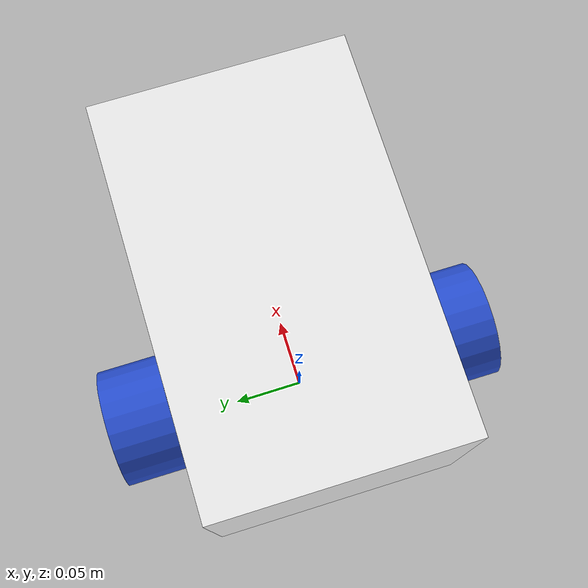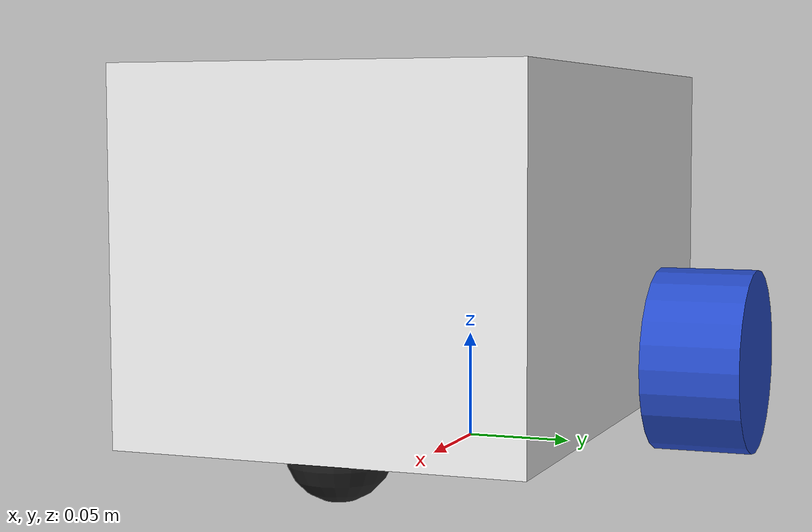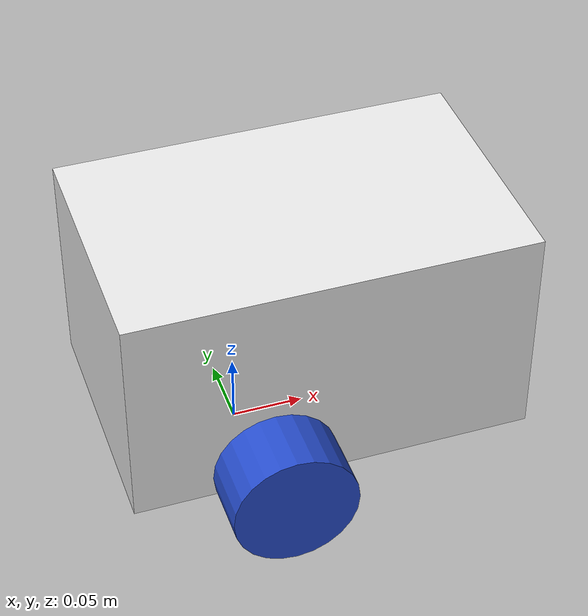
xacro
<?xml version="1.0"?>
<robot xmlns:xacro="http://www.ros.org/wiki/xacro">

    <!-- ================= BASE_FOOTPRINT ================= -->
    <!-- Ground-level frame, directly below base_link.
         Required by Nav2/RTAB-Map. -->
    <link name="base_footprint"/>

    <!-- ================= BASE_LINK ================= -->
    <!-- base_link placed at wheel axle height above base_footprint. -->
    <joint name="base_footprint_to_base_link" type="fixed">
        <parent link="base_footprint"/>
        <child link="base_link"/>
        <origin xyz="0 0 0.0425" rpy="0 0 0"/>
    </joint>

    <link name="base_link"/>

    <!-- ================= CHASSIS ================= -->
    <!-- Body origin shifted so wheel axle (base_link origin) is at 95mm from rear.
         Body bottom sits 20mm above ground = 2.5mm below base_link. -->
    <joint name="chassis_joint" type="fixed">
        <parent link="base_link"/>
        <child link="chassis"/>
        <origin xyz="-0.095 0 -0.0225" rpy="0 0 0"/>
    </joint>

    <link name="chassis">
        <visual>
            <origin xyz="0.139 0 0.078" rpy="0 0 0"/>
            <geometry>
                <box size="0.278 0.176 0.156"/>
            </geometry>
            <material name="white"/>
        </visual>
        <collision>
            <origin xyz="0.139 0 0.078" rpy="0 0 0"/>
            <geometry>
                <box size="0.278 0.176 0.156"/>
            </geometry>
        </collision>
        <xacro:inertial_box mass="3.0" x="0.278" y="0.176" z="0.156">
            <origin xyz="0.139 0 0.078" rpy="0 0 0"/>
        </xacro:inertial_box>
    </link>

    <!-- ================= LEFT WHEEL ================= -->
    <!-- Wheel separation 0.235 → each wheel 0.1175 from center.
         Wheel z=0 in base_link frame (axle is at base_link height). -->
    <joint name="left_wheel_joint" type="continuous">
        <parent link="base_link"/>
        <child link="left_wheel"/>
        <origin xyz="0 0.1175 0" rpy="-${pi/2} 0 0"/>
        <axis xyz="0 0 1"/>
    </joint>

    <link name="left_wheel">
        <visual>
            <geometry>
                <cylinder radius="0.0425" length="0.045"/>
            </geometry>
            <material name="blue"/>
        </visual>
        <collision>
            <geometry>
                <cylinder radius="0.0425" length="0.045"/>
            </geometry>
        </collision>
        <xacro:inertial_cylinder mass="0.15" length="0.045" radius="0.0425">
            <origin xyz="0 0 0" rpy="0 0 0"/>
        </xacro:inertial_cylinder>
    </link>

    <!-- ================= RIGHT WHEEL ================= -->
    <joint name="right_wheel_joint" type="continuous">
        <parent link="base_link"/>
        <child link="right_wheel"/>
        <origin xyz="0 -0.1175 0" rpy="${pi/2} 0 0"/>
        <axis xyz="0 0 -1"/>
    </joint>

    <link name="right_wheel">
        <visual>
            <geometry>
                <cylinder radius="0.0425" length="0.045"/>
            </geometry>
            <material name="blue"/>
        </visual>
        <collision>
            <geometry>
                <cylinder radius="0.0425" length="0.045"/>
            </geometry>
        </collision>
        <xacro:inertial_cylinder mass="0.15" length="0.045" radius="0.0425">
            <origin xyz="0 0 0" rpy="0 0 0"/>
        </xacro:inertial_cylinder>
    </link>

    <!-- ================= CASTER WHEEL ================= -->
    <joint name="caster_wheel_joint" type="fixed">
        <parent link="chassis"/>
        <child link="caster_wheel"/>
        <origin xyz="0.250 0 0.0025" rpy="0 0 0"/>
    </joint>

    <link name="caster_wheel">
        <visual>
            <geometry>
                <sphere radius="0.0225"/>
            </geometry>
            <material name="black"/>
        </visual>
        <collision>
            <geometry>
                <sphere radius="0.0225"/>
            </geometry>
        </collision>
        <xacro:inertial_sphere mass="0.05" radius="0.0225">
            <origin xyz="0 0 0" rpy="0 0 0"/>
        </xacro:inertial_sphere>
    </link>

</robot>
